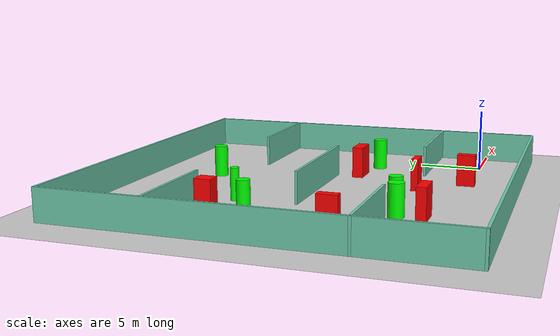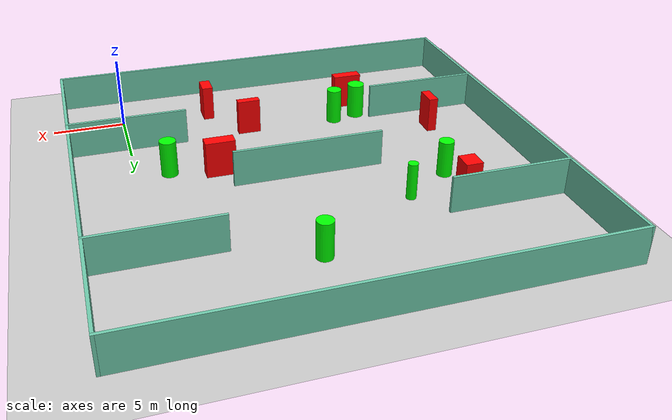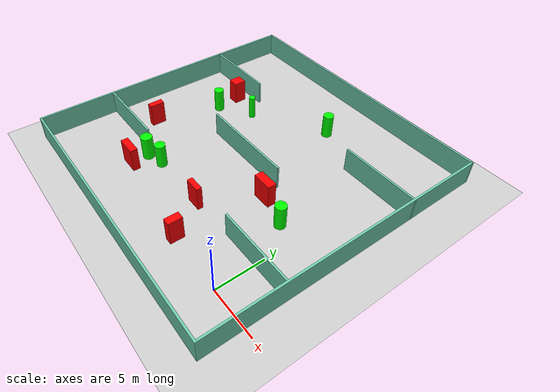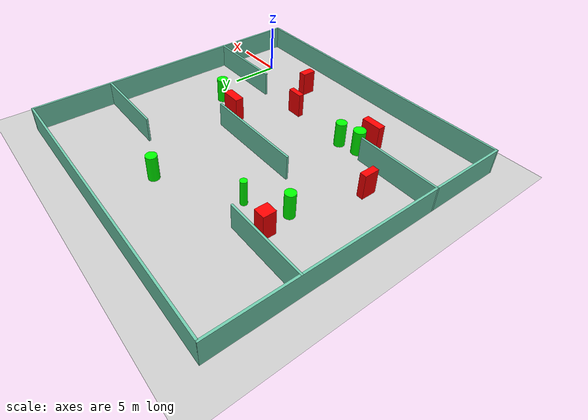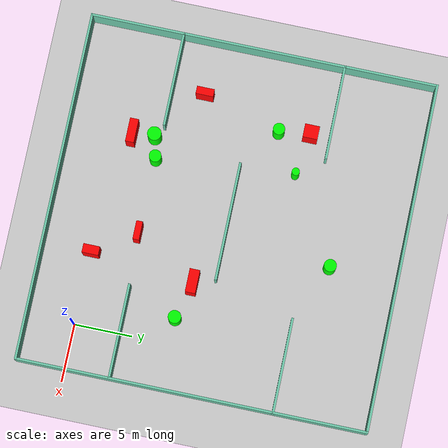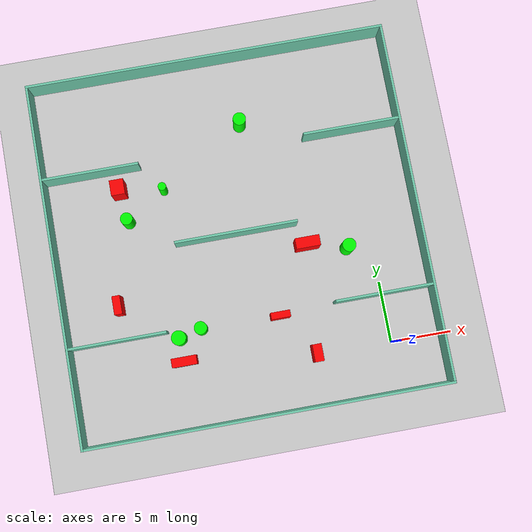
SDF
<sdf version="1.7">
 <world name="default">
  <light name="sun" type="directional">
   <pose>0 0 10 0 -0 0</pose>
   <diffuse>0.8 0.8 0.8 1</diffuse>
   <specular>0.2 0.2 0.2 1</specular>
   <attenuation>
    <range>1000</range>
    <constant>0.9</constant>
    <linear>0.01</linear>
    <quadratic>0.001</quadratic>
   </attenuation>
   <direction>-0.5 0.1 -0.9</direction>
   <spot><inner_angle>0</inner_angle><outer_angle>0</outer_angle><falloff>0</falloff></spot>
  </light>
  <model name="ground_plane">
   <static>1</static>
   <link name="link">
    <collision name="collision">
     <geometry><plane><normal>0 0 1</normal><size>100 100</size></plane></geometry>
     <surface>
      <contact><collide_bitmask>65535</collide_bitmask></contact>
      <friction><ode><mu>100</mu><mu2>50</mu2></ode></friction>
     </surface>
    </collision>
    <visual name="visual">
     <cast_shadows>0</cast_shadows>
     <geometry><plane><normal>0 0 1</normal><size>100 100</size></plane></geometry>
     <material>
      <script><uri>file://media/materials/scripts/gazebo.material</uri><name>Gazebo/Grey</name></script>
     </material>
    </visual>
   </link>
  </model>
  <gravity>0 0 -9.8</gravity>
  <magnetic_field>6e-06 2.3e-05 -4.2e-05</magnetic_field>
  <atmosphere type="adiabatic"/>
  <physics type="ode">
   <max_step_size>0.001</max_step_size>
   <real_time_factor>1</real_time_factor>
   <real_time_update_rate>1000</real_time_update_rate>
  </physics>
  <scene><ambient>0.4 0.4 0.4 1</ambient><background>0.7 0.7 0.7 1</background><shadows>1</shadows></scene>
  <spherical_coordinates>
   <surface_model>EARTH_WGS84</surface_model>
   <latitude_deg>0</latitude_deg>
   <longitude_deg>0</longitude_deg>
   <elevation>0</elevation>
   <heading_deg>0</heading_deg>
  </spherical_coordinates>
  <model name="my_base_walls">
   <link name="Wall_10">
    <collision name="Wall_10_Collision">
     <geometry><box><size>8.2 0.2 2.5</size></box></geometry>
     <pose>0 0 1.25 0 -0 0</pose>
    </collision>
    <visual name="Wall_10_Visual">
     <pose>0 0 1.25 0 -0 0</pose>
     <geometry><box><size>8.2 0.2 2.5</size></box></geometry>
     <material>
      <script><uri>file://media/materials/scripts/gazebo.material</uri><name>Gazebo/Grey</name></script>
      <ambient>0.435294 0.796078 0.67451 1</ambient>
     </material>
     <meta><layer>0</layer></meta>
    </visual>
    <pose>-11 -7 0 0 -0 0</pose>
   </link>
   <link name="Wall_12">
    <collision name="Wall_12_Collision">
     <geometry><box><size>8.2 0.2 2.5</size></box></geometry>
     <pose>0 0 1.25 0 -0 0</pose>
    </collision>
    <visual name="Wall_12_Visual">
     <pose>0 0 1.25 0 -0 0</pose>
     <geometry><box><size>8.2 0.2 2.5</size></box></geometry>
     <material>
      <script><uri>file://media/materials/scripts/gazebo.material</uri><name>Gazebo/Grey</name></script>
      <ambient>0.435294 0.796078 0.67451 1</ambient>
     </material>
     <meta><layer>0</layer></meta>
    </visual>
    <pose>-11 7 0 0 -0 0</pose>
   </link>
   <link name="Wall_14">
    <collision name="Wall_14_Collision">
     <geometry><box><size>8.2 0.2 2.5</size></box></geometry>
     <pose>0 0 1.25 0 -0 0</pose>
    </collision>
    <visual name="Wall_14_Visual">
     <pose>0 0 1.25 0 -0 0</pose>
     <geometry><box><size>8.2 0.2 2.5</size></box></geometry>
     <material>
      <script><uri>file://media/materials/scripts/gazebo.material</uri><name>Gazebo/Grey</name></script>
      <ambient>0.435294 0.796078 0.67451 1</ambient>
     </material>
     <meta><layer>0</layer></meta>
    </visual>
    <pose>11 7 0 0 -0 3.14159</pose>
   </link>
   <link name="Wall_16">
    <collision name="Wall_16_Collision">
     <geometry><box><size>10.2 0.2 2.5</size></box></geometry>
     <pose>0 0 1.25 0 -0 0</pose>
    </collision>
    <visual name="Wall_16_Visual">
     <pose>0 0 1.25 0 -0 0</pose>
     <geometry><box><size>10.2 0.2 2.5</size></box></geometry>
     <material>
      <script><uri>file://media/materials/scripts/gazebo.material</uri><name>Gazebo/Grey</name></script>
      <ambient>0.435294 0.796078 0.67451 1</ambient>
     </material>
     <meta><layer>0</layer></meta>
    </visual>
    <pose>0 0 0 0 -0 3.14159</pose>
   </link>
   <link name="Wall_2">
    <collision name="Wall_2_Collision">
     <geometry><box><size>30.2 0.2 2.5</size></box></geometry>
     <pose>0 0 1.25 0 -0 0</pose>
    </collision>
    <visual name="Wall_2_Visual">
     <pose>0 0 1.25 0 -0 0</pose>
     <geometry><box><size>30.2 0.2 2.5</size></box></geometry>
     <material>
      <script><uri>file://media/materials/scripts/gazebo.material</uri><name>Gazebo/Grey</name></script>
      <ambient>0.435294 0.796078 0.67451 1</ambient>
     </material>
     <meta><layer>0</layer></meta>
    </visual>
    <pose>0 -15 0 0 -0 3.14159</pose>
   </link>
   <link name="Wall_3">
    <collision name="Wall_3_Collision">
     <geometry><box><size>30.2 0.2 2.5</size></box></geometry>
     <pose>0 0 1.25 0 -0 0</pose>
    </collision>
    <visual name="Wall_3_Visual">
     <pose>0 0 1.25 0 -0 0</pose>
     <geometry><box><size>30.2 0.2 2.5</size></box></geometry>
     <material>
      <script><uri>file://media/materials/scripts/gazebo.material</uri><name>Gazebo/Grey</name></script>
      <ambient>0.435294 0.796078 0.67451 1</ambient>
     </material>
     <meta><layer>0</layer></meta>
    </visual>
    <pose>-15 0 0 0 -0 1.5708</pose>
   </link>
   <link name="Wall_4">
    <collision name="Wall_4_Collision">
     <geometry><box><size>30.2 0.2 2.5</size></box></geometry>
     <pose>0 0 1.25 0 -0 0</pose>
    </collision>
    <visual name="Wall_4_Visual">
     <pose>0 0 1.25 0 -0 0</pose>
     <geometry><box><size>30.2 0.2 2.5</size></box></geometry>
     <material>
      <script><uri>file://media/materials/scripts/gazebo.material</uri><name>Gazebo/Grey</name></script>
      <ambient>0.435294 0.796078 0.67451 1</ambient>
     </material>
     <meta><layer>0</layer></meta>
    </visual>
    <pose>0 15 0 0 -0 0</pose>
   </link>
   <link name="Wall_6">
    <collision name="Wall_6_Collision">
     <geometry><box><size>30.2 0.2 2.5</size></box></geometry>
     <pose>0 0 1.25 0 -0 0</pose>
    </collision>
    <visual name="Wall_6_Visual">
     <pose>0 0 1.25 0 -0 0</pose>
     <geometry><box><size>30.2 0.2 2.5</size></box></geometry>
     <material>
      <script><uri>file://media/materials/scripts/gazebo.material</uri><name>Gazebo/Grey</name></script>
      <ambient>0.435294 0.796078 0.67451 1</ambient>
     </material>
     <meta><layer>0</layer></meta>
    </visual>
    <pose>15 0 0 0 -0 1.5708</pose>
   </link>
   <link name="Wall_8">
    <collision name="Wall_8_Collision">
     <geometry><box><size>8.2 0.2 2.5</size></box></geometry>
     <pose>0 0 1.25 0 -0 0</pose>
    </collision>
    <visual name="Wall_8_Visual">
     <pose>0 0 1.25 0 -0 0</pose>
     <geometry><box><size>8.2 0.2 2.5</size></box></geometry>
     <material>
      <script><uri>file://media/materials/scripts/gazebo.material</uri><name>Gazebo/Grey</name></script>
      <ambient>0.435294 0.796078 0.67451 1</ambient>
     </material>
     <meta><layer>0</layer></meta>
    </visual>
    <pose>11 -7 0 0 -0 3.14159</pose>
   </link>
   <static>1</static>
   <pose>-11 11 0 0 -0 0</pose>
  </model>
  <model name="cylinder1">
   <static>1</static>
   <link name="link">
    <inertial>
     <mass>1</mass>
     <inertia><ixx>0.5</ixx><ixy>0</ixy><ixz>0</ixz><iyy>0.5</iyy><iyz>0</iyz><izz>1</izz></inertia>
    </inertial>
    <collision name="collision">
     <geometry><cylinder><radius>0.6003691089280103</radius><length>2.5</length></cylinder></geometry>
    </collision>
    <visual name="visual">
     <geometry><cylinder><radius>0.6003691089280103</radius><length>2.5</length></cylinder></geometry>
     <material>
      <ambient>0 1 0 1</ambient>
      <diffuse>0 1 0 1</diffuse>
      <specular>0.1 0.1 0.1 1</specular>
      <emissive>0 0 0 0</emissive>
     </material>
    </visual>
   </link>
   <pose>-17.034325603592123 3.3501623364488804 1.25 0 0 0</pose>
  </model>
  <model name="cylinder2">
   <static>1</static>
   <link name="link">
    <inertial>
     <mass>1</mass>
     <inertia><ixx>0.5</ixx><ixy>0</ixy><ixz>0</ixz><iyy>0.5</iyy><iyz>0</iyz><izz>1</izz></inertia>
    </inertial>
    <collision name="collision">
     <geometry><cylinder><radius>0.3347305536284506</radius><length>2.5</length></cylinder></geometry>
    </collision>
    <visual name="visual">
     <geometry><cylinder><radius>0.3347305536284506</radius><length>2.5</length></cylinder></geometry>
     <material>
      <ambient>0 1 0 1</ambient>
      <diffuse>0 1 0 1</diffuse>
      <specular>0.1 0.1 0.1 1</specular>
      <emissive>0 0 0 0</emissive>
     </material>
    </visual>
   </link>
   <pose>-16.30076298094179 15.734414751755686 1.25 0 0 0</pose>
  </model>
  <model name="cylinder3">
   <static>1</static>
   <link name="link">
    <inertial>
     <mass>1</mass>
     <inertia><ixx>0.5</ixx><ixy>0</ixy><ixz>0</ixz><iyy>0.5</iyy><iyz>0</iyz><izz>1</izz></inertia>
    </inertial>
    <collision name="collision">
     <geometry><cylinder><radius>0.5283456953226966</radius><length>2.5</length></cylinder></geometry>
    </collision>
    <visual name="visual">
     <geometry><cylinder><radius>0.5283456953226966</radius><length>2.5</length></cylinder></geometry>
     <material>
      <ambient>0 1 0 1</ambient>
      <diffuse>0 1 0 1</diffuse>
      <specular>0.1 0.1 0.1 1</specular>
      <emissive>0 0 0 0</emissive>
     </material>
    </visual>
   </link>
   <pose>-15.169836782258402 3.8222854393924006 1.25 0 0 0</pose>
  </model>
  <model name="cylinder4">
   <static>1</static>
   <link name="link">
    <inertial>
     <mass>1</mass>
     <inertia><ixx>0.5</ixx><ixy>0</ixy><ixz>0</ixz><iyy>0.5</iyy><iyz>0</iyz><izz>1</izz></inertia>
    </inertial>
    <collision name="collision">
     <geometry><cylinder><radius>0.5589873765670242</radius><length>2.5</length></cylinder></geometry>
    </collision>
    <visual name="visual">
     <geometry><cylinder><radius>0.5589873765670242</radius><length>2.5</length></cylinder></geometry>
     <material>
      <ambient>0 1 0 1</ambient>
      <diffuse>0 1 0 1</diffuse>
      <specular>0.1 0.1 0.1 1</specular>
      <emissive>0 0 0 0</emissive>
     </material>
    </visual>
   </link>
   <pose>-2.14816397412638 8.285373910115432 1.25 0 0 0</pose>
  </model>
  <model name="cylinder5">
   <static>1</static>
   <link name="link">
    <inertial>
     <mass>1</mass>
     <inertia><ixx>0.5</ixx><ixy>0</ixy><ixz>0</ixz><iyy>0.5</iyy><iyz>0</iyz><izz>1</izz></inertia>
    </inertial>
    <collision name="collision">
     <geometry><cylinder><radius>0.538422658111246</radius><length>2.5</length></cylinder></geometry>
    </collision>
    <visual name="visual">
     <geometry><cylinder><radius>0.538422658111246</radius><length>2.5</length></cylinder></geometry>
     <material>
      <ambient>0 1 0 1</ambient>
      <diffuse>0 1 0 1</diffuse>
      <specular>0.1 0.1 0.1 1</specular>
      <emissive>0 0 0 0</emissive>
     </material>
    </visual>
   </link>
   <pose>-9.073909355684432 20.194161472837283 1.25 0 0 0</pose>
  </model>
  <model name="cylinder6">
   <static>1</static>
   <link name="link">
    <inertial>
     <mass>1</mass>
     <inertia><ixx>0.5</ixx><ixy>0</ixy><ixz>0</ixz><iyy>0.5</iyy><iyz>0</iyz><izz>1</izz></inertia>
    </inertial>
    <collision name="collision">
     <geometry><cylinder><radius>0.5069787702529586</radius><length>2.5</length></cylinder></geometry>
    </collision>
    <visual name="visual">
     <geometry><cylinder><radius>0.5069787702529586</radius><length>2.5</length></cylinder></geometry>
     <material>
      <ambient>0 1 0 1</ambient>
      <diffuse>0 1 0 1</diffuse>
      <specular>0.1 0.1 0.1 1</specular>
      <emissive>0 0 0 0</emissive>
     </material>
    </visual>
   </link>
   <pose>-19.592822942654927 13.606681156046637 1.25 0 0 0</pose>
  </model>
  <model name="box1">
   <static>1</static>
   <link name="link">
    <inertial>
     <mass>1</mass>
     <inertia><ixx>0.083</ixx><ixy>0</ixy><ixz>0</ixz><iyy>0.083</iyy><iyz>0</iyz><izz>0.083</izz></inertia>
    </inertial>
    <collision name="collision">
     <geometry><box><size>0.6484308809270726 1.51565162037963 2.5</size></box></geometry>
    </collision>
    <visual name="visual">
     <geometry><box><size>0.6484308809270726 1.51565162037963 2.5</size></box></geometry>
     <material>
      <ambient>1 0 0 1</ambient>
      <diffuse>1 0 0 1</diffuse>
      <specular>0.1 0.1 0.1 1</specular>
      <emissive>0 0 0 0</emissive>
     </material>
    </visual>
    <sensor name="my_contact" type="contact">
     <contact><collision>box_collision</collision><topic>__default_topic__</topic></contact>
    </sensor>
   </link>
   <pose>-21.466372586552485 6.814128294806618 1.25 0 0 0</pose>
  </model>
  <model name="box2">
   <static>1</static>
   <link name="link">
    <inertial>
     <mass>1</mass>
     <inertia><ixx>0.083</ixx><ixy>0</ixy><ixz>0</ixz><iyy>0.083</iyy><iyz>0</iyz><izz>0.083</izz></inertia>
    </inertial>
    <collision name="collision">
     <geometry><box><size>2.010496842564252 0.8756012140642209 2.5</size></box></geometry>
    </collision>
    <visual name="visual">
     <geometry><box><size>2.010496842564252 0.8756012140642209 2.5</size></box></geometry>
     <material>
      <ambient>1 0 0 1</ambient>
      <diffuse>1 0 0 1</diffuse>
      <specular>0.1 0.1 0.1 1</specular>
      <emissive>0 0 0 0</emissive>
     </material>
    </visual>
    <sensor name="my_contact" type="contact">
     <contact><collision>box_collision</collision><topic>__default_topic__</topic></contact>
    </sensor>
   </link>
   <pose>-5.41385502131055 9.132520262179009 1.25 0 0 0</pose>
  </model>
  <model name="box3">
   <static>1</static>
   <link name="link">
    <inertial>
     <mass>1</mass>
     <inertia><ixx>0.083</ixx><ixy>0</ixy><ixz>0</ixz><iyy>0.083</iyy><iyz>0</iyz><izz>0.083</izz></inertia>
    </inertial>
    <collision name="collision">
     <geometry><box><size>2.039337749339462 0.7410678734493485 2.5</size></box></geometry>
    </collision>
    <visual name="visual">
     <geometry><box><size>2.039337749339462 0.7410678734493485 2.5</size></box></geometry>
     <material>
      <ambient>1 0 0 1</ambient>
      <diffuse>1 0 0 1</diffuse>
      <specular>0.1 0.1 0.1 1</specular>
      <emissive>0 0 0 0</emissive>
     </material>
    </visual>
    <sensor name="my_contact" type="contact">
     <contact><collision>box_collision</collision><topic>__default_topic__</topic></contact>
    </sensor>
   </link>
   <pose>-16.919855567611748 1.4385598418371632 1.25 0 0 0</pose>
  </model>
  <model name="box4">
   <static>1</static>
   <link name="link">
    <inertial>
     <mass>1</mass>
     <inertia><ixx>0.083</ixx><ixy>0</ixy><ixz>0</ixz><iyy>0.083</iyy><iyz>0</iyz><izz>0.083</izz></inertia>
    </inertial>
    <collision name="collision">
     <geometry><box><size>1.5902589807699854 0.5470661365278596 2.5</size></box></geometry>
    </collision>
    <visual name="visual">
     <geometry><box><size>1.5902589807699854 0.5470661365278596 2.5</size></box></geometry>
     <material>
      <ambient>1 0 0 1</ambient>
      <diffuse>1 0 0 1</diffuse>
      <specular>0.1 0.1 0.1 1</specular>
      <emissive>0 0 0 0</emissive>
     </material>
    </visual>
    <sensor name="my_contact" type="contact">
     <contact><collision>box_collision</collision><topic>__default_topic__</topic></contact>
    </sensor>
   </link>
   <pose>-8.661572577632354 3.721381544791389 1.25 0 0 0</pose>
  </model>
  <model name="box5">
   <static>1</static>
   <link name="link">
    <inertial>
     <mass>1</mass>
     <inertia><ixx>0.083</ixx><ixy>0</ixy><ixz>0</ixz><iyy>0.083</iyy><iyz>0</iyz><izz>0.083</izz></inertia>
    </inertial>
    <collision name="collision">
     <geometry><box><size>1.1446101767875816 1.2717448671550475 2.5</size></box></geometry>
    </collision>
    <visual name="visual">
     <geometry><box><size>1.1446101767875816 1.2717448671550475 2.5</size></box></geometry>
     <material>
      <ambient>1 0 0 1</ambient>
      <diffuse>1 0 0 1</diffuse>
      <specular>0.1 0.1 0.1 1</specular>
      <emissive>0 0 0 0</emissive>
     </material>
    </visual>
    <sensor name="my_contact" type="contact">
     <contact><collision>box_collision</collision><topic>__default_topic__</topic></contact>
    </sensor>
   </link>
   <pose>-19.930104357795507 16.329053168370713 1.25 0 0 0</pose>
  </model>
  <model name="box6">
   <static>1</static>
   <link name="link">
    <inertial>
     <mass>1</mass>
     <inertia><ixx>0.083</ixx><ixy>0</ixy><ixz>0</ixz><iyy>0.083</iyy><iyz>0</iyz><izz>0.083</izz></inertia>
    </inertial>
    <collision name="collision">
     <geometry><box><size>0.7540628119911144 1.4158268683142052 2.5</size></box></geometry>
    </collision>
    <visual name="visual">
     <geometry><box><size>0.7540628119911144 1.4158268683142052 2.5</size></box></geometry>
     <material>
      <ambient>1 0 0 1</ambient>
      <diffuse>1 0 0 1</diffuse>
      <specular>0.1 0.1 0.1 1</specular>
      <emissive>0 0 0 0</emissive>
     </material>
    </visual>
    <sensor name="my_contact" type="contact">
     <contact><collision>box_collision</collision><topic>__default_topic__</topic></contact>
    </sensor>
   </link>
   <pose>-6.262259117773954 0.20823545790256492 1.25 0 0 0</pose>
  </model>
 </world>
</sdf>
